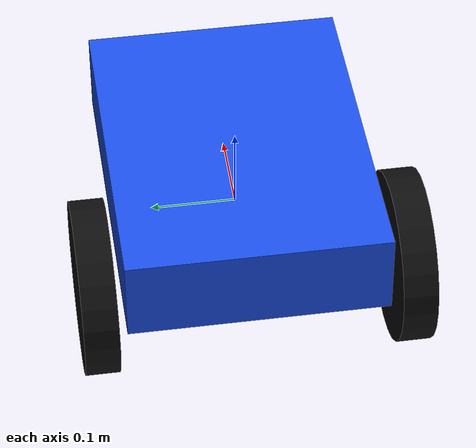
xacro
<?xml version="1.0"?>
<robot xmlns:xacro="http://www.ros.org/wiki/xacro" name="diff_drive">

  <!-- ========================== Parameters ========================== -->
  <xacro:property name="chassis_length"   value="0.40"/>
  <xacro:property name="chassis_width"    value="0.30"/>
  <xacro:property name="chassis_height"   value="0.10"/>
  <xacro:property name="chassis_mass"     value="5.0"/>
  <xacro:property name="chassis_z"        value="0.05"/>  <!-- chassis center above base_link -->

  <xacro:property name="wheel_radius"     value="0.10"/>
  <xacro:property name="wheel_width"      value="0.04"/>
  <xacro:property name="wheel_mass"       value="1.0"/>
  <xacro:property name="wheel_x"          value="-0.12"/> <!-- axle behind chassis center -->
  <xacro:property name="wheel_separation" value="0.36"/>

  <xacro:property name="caster_radius"    value="0.05"/>
  <xacro:property name="caster_mass"      value="0.5"/>
  <xacro:property name="caster_x"         value="0.14"/>

  <!-- base_link origin sits at the wheel axle height (wheel_radius above ground) -->

  <!-- ========================== Chassis ========================== -->
  <link name="base_link">
    <visual>
      <origin xyz="0 0 ${chassis_z}" rpy="0 0 0"/>
      <geometry>
        <box size="${chassis_length} ${chassis_width} ${chassis_height}"/>
      </geometry>
      <material name="chassis_blue">
        <color rgba="0.1 0.3 0.9 1.0"/>
      </material>
    </visual>
    <collision>
      <origin xyz="0 0 ${chassis_z}" rpy="0 0 0"/>
      <geometry>
        <box size="${chassis_length} ${chassis_width} ${chassis_height}"/>
      </geometry>
    </collision>
    <inertial>
      <origin xyz="0 0 ${chassis_z}" rpy="0 0 0"/>
      <mass value="${chassis_mass}"/>
      <inertia
        ixx="${chassis_mass/12.0 * (chassis_width*chassis_width + chassis_height*chassis_height)}"
        iyy="${chassis_mass/12.0 * (chassis_length*chassis_length + chassis_height*chassis_height)}"
        izz="${chassis_mass/12.0 * (chassis_length*chassis_length + chassis_width*chassis_width)}"
        ixy="0.0" ixz="0.0" iyz="0.0"/>
    </inertial>
  </link>

  <!-- ========================== Drive wheels ========================== -->
  <xacro:macro name="wheel" params="prefix reflect">
    <link name="${prefix}_wheel">
      <visual>
        <geometry>
          <cylinder radius="${wheel_radius}" length="${wheel_width}"/>
        </geometry>
        <material name="${prefix}_wheel_black">
          <color rgba="0.05 0.05 0.05 1.0"/>
        </material>
      </visual>
      <collision>
        <geometry>
          <cylinder radius="${wheel_radius}" length="${wheel_width}"/>
        </geometry>
      </collision>
      <inertial>
        <mass value="${wheel_mass}"/>
        <inertia
          ixx="${wheel_mass/12.0 * (3*wheel_radius*wheel_radius + wheel_width*wheel_width)}"
          iyy="${wheel_mass/12.0 * (3*wheel_radius*wheel_radius + wheel_width*wheel_width)}"
          izz="${wheel_mass/2.0 * wheel_radius*wheel_radius}"
          ixy="0.0" ixz="0.0" iyz="0.0"/>
      </inertial>
    </link>

    <!-- rpy=-pi/2 about X aligns the cylinder (and joint Z axis) with the robot's Y axis -->
    <joint name="${prefix}_wheel_joint" type="continuous">
      <parent link="base_link"/>
      <child link="${prefix}_wheel"/>
      <origin xyz="${wheel_x} ${reflect * wheel_separation/2} 0" rpy="${-pi/2} 0 0"/>
      <axis xyz="0 0 1"/>
    </joint>

    <gazebo reference="${prefix}_wheel">
      <mu1>1.0</mu1>
      <mu2>1.0</mu2>
    </gazebo>
  </xacro:macro>

  <xacro:wheel prefix="left"  reflect="1"/>
  <xacro:wheel prefix="right" reflect="-1"/>

  <!-- ========================== Caster wheel ========================== -->
  <link name="caster_wheel">
    <visual>
      <geometry>
        <sphere radius="${caster_radius}"/>
      </geometry>
      <material name="caster_grey">
        <color rgba="0.5 0.5 0.5 1.0"/>
      </material>
    </visual>
    <collision>
      <geometry>
        <sphere radius="${caster_radius}"/>
      </geometry>
    </collision>
    <inertial>
      <mass value="${caster_mass}"/>
      <inertia
        ixx="${0.4 * caster_mass * caster_radius * caster_radius}"
        iyy="${0.4 * caster_mass * caster_radius * caster_radius}"
        izz="${0.4 * caster_mass * caster_radius * caster_radius}"
        ixy="0.0" ixz="0.0" iyz="0.0"/>
    </inertial>
  </link>

  <joint name="caster_joint" type="fixed">
    <parent link="base_link"/>
    <child link="caster_wheel"/>
    <origin xyz="${caster_x} 0 ${-(wheel_radius - caster_radius)}" rpy="0 0 0"/>
  </joint>

  <!-- Frictionless caster: it just slides, the drive wheels do the steering -->
  <gazebo reference="caster_wheel">
    <mu1>0.0</mu1>
    <mu2>0.0</mu2>
  </gazebo>

  <!-- ========================== Gazebo Fortress plugins ========================== -->
  <gazebo>
    <plugin filename="ignition-gazebo-diff-drive-system"
            name="ignition::gazebo::systems::DiffDrive">
      <left_joint>left_wheel_joint</left_joint>
      <right_joint>right_wheel_joint</right_joint>
      <wheel_separation>${wheel_separation}</wheel_separation>
      <wheel_radius>${wheel_radius}</wheel_radius>
      <odom_publish_frequency>50</odom_publish_frequency>
      <frame_id>odom</frame_id>
      <child_frame_id>base_link</child_frame_id>
    </plugin>

    <!-- Publishes wheel joint positions so robot_state_publisher / RViz can
         animate the wheels. Default gz topic:
           /world/diff_drive_world/model/diff_drive/joint_state (gz.msgs.Model) -->
    <plugin filename="ignition-gazebo-joint-state-publisher-system"
            name="ignition::gazebo::systems::JointStatePublisher">
    </plugin>
  </gazebo>

</robot>
